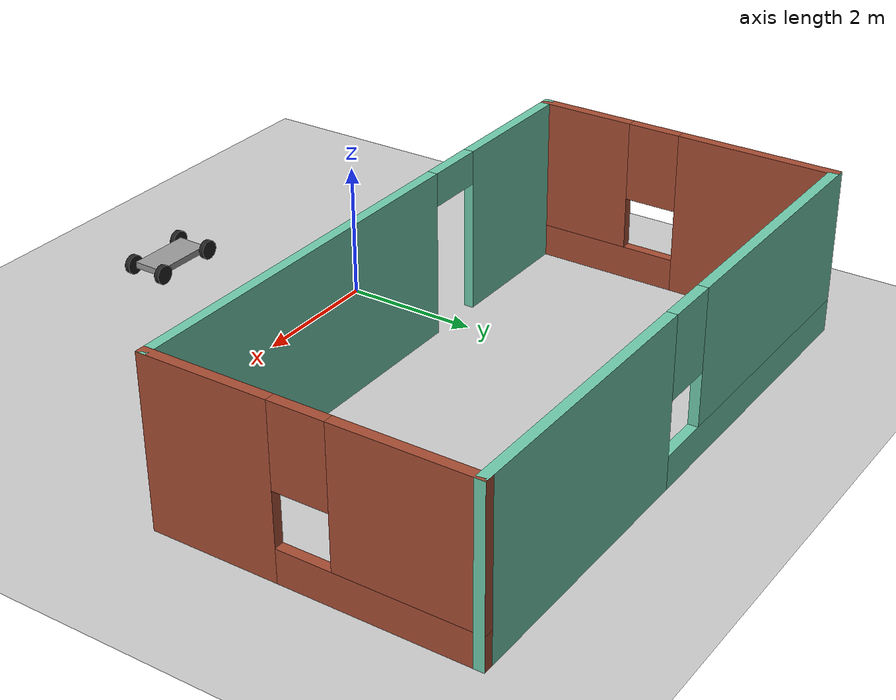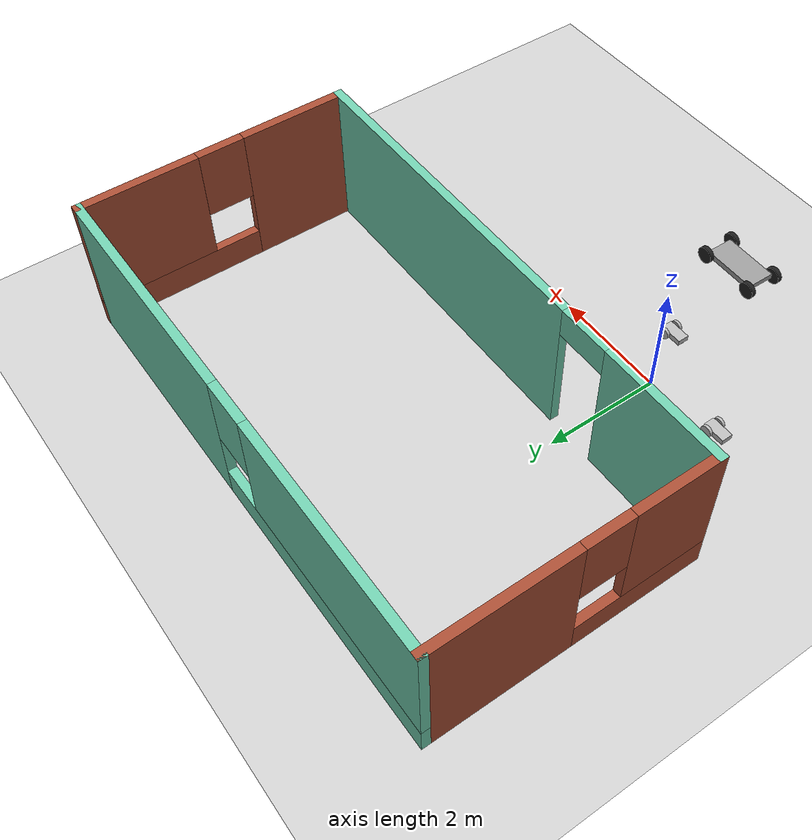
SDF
<sdf version="1.6">
 <world name="default">
  <plugin name="hello" filename="libwelcome.so"/>
  <light name="sun" type="directional">
   <pose>0 0 10 0 -0 0</pose>
   <diffuse>0.8 0.8 0.8 1</diffuse>
   <specular>0.2 0.2 0.2 1</specular>
   <attenuation>
    <range>1000</range>
    <constant>0.9</constant>
    <linear>0.01</linear>
    <quadratic>0.001</quadratic>
   </attenuation>
   <direction>-0.5 0.1 -0.9</direction>
  </light>
  <model name="ground_plane">
   <static>1</static>
   <link name="link">
    <collision name="collision">
     <geometry><plane><normal>0 0 1</normal><size>100 100</size></plane></geometry>
     <surface>
      <contact><collide_bitmask>65535</collide_bitmask></contact>
      <friction><ode><mu>100</mu><mu2>50</mu2></ode></friction>
     </surface>
    </collision>
    <visual name="visual">
     <cast_shadows>0</cast_shadows>
     <geometry><plane><normal>0 0 1</normal><size>100 100</size></plane></geometry>
     <material>
      <script><uri>file://media/materials/scripts/gazebo.material</uri><name>Gazebo/Grey</name></script>
     </material>
    </visual>
   </link>
  </model>
  <gravity>0 0 -9.8</gravity>
  <magnetic_field>6e-06 2.3e-05 -4.2e-05</magnetic_field>
  <atmosphere type="adiabatic"/>
  <physics name="default_physics" default="0" type="ode">
   <max_step_size>0.001</max_step_size>
   <real_time_factor>1</real_time_factor>
   <real_time_update_rate>1000</real_time_update_rate>
  </physics>
  <scene><ambient>0.4 0.4 0.4 1</ambient><background>0.7 0.7 0.7 1</background><shadows>1</shadows></scene>
  <audio><device>default</device></audio>
  <spherical_coordinates>
   <surface_model>EARTH_WGS84</surface_model>
   <latitude_deg>0</latitude_deg>
   <longitude_deg>0</longitude_deg>
   <elevation>0</elevation>
   <heading_deg>0</heading_deg>
  </spherical_coordinates>
  <model name="Scott_building">
   <pose>1.73742 3.95881 0 0 -0 0</pose>
   <link name="Wall_3">
    <pose>-4.425 0 0 0 -0 -1.5708</pose>
    <visual name="Wall_3_Visual_0">
     <pose>-1.15369 0 1.25 0 -0 0</pose>
     <geometry><box><size>2.44261 0.15 2.5</size></box></geometry>
     <material>
      <script><uri>file://media/materials/scripts/gazebo.material</uri><name>Gazebo/Bricks</name></script>
      <ambient>0.435294 0.796078 0.67451 1</ambient>
     </material>
     <meta><layer>0</layer></meta>
    </visual>
    <collision name="Wall_3_Collision_0">
     <geometry><box><size>2.44261 0.15 2.5</size></box></geometry>
     <pose>-1.15369 0 1.25 0 -0 0</pose>
    </collision>
    <visual name="Wall_3_Visual_1">
     <pose>1.22131 0 0.25 0 -0 0</pose>
     <geometry><box><size>2.30739 0.15 0.5</size></box></geometry>
     <material>
      <script><uri>file://media/materials/scripts/gazebo.material</uri><name>Gazebo/Bricks</name></script>
      <ambient>0.435294 0.796078 0.67451 1</ambient>
     </material>
     <meta><layer>0</layer></meta>
    </visual>
    <collision name="Wall_3_Collision_1">
     <geometry><box><size>2.30739 0.15 0.5</size></box></geometry>
     <pose>1.22131 0 0.25 0 -0 0</pose>
    </collision>
    <visual name="Wall_3_Visual_2">
     <pose>1.62131 0 1.5 0 -0 0</pose>
     <geometry><box><size>1.50739 0.15 2</size></box></geometry>
     <material>
      <script><uri>file://media/materials/scripts/gazebo.material</uri><name>Gazebo/Bricks</name></script>
      <ambient>0.435294 0.796078 0.67451 1</ambient>
     </material>
     <meta><layer>0</layer></meta>
    </visual>
    <collision name="Wall_3_Collision_2">
     <geometry><box><size>1.50739 0.15 2</size></box></geometry>
     <pose>1.62131 0 1.5 0 -0 0</pose>
    </collision>
    <visual name="Wall_3_Visual_3">
     <pose>0.467613 0 1.9 0 -0 0</pose>
     <geometry><box><size>0.8 0.15 1.2</size></box></geometry>
     <material>
      <script><uri>file://media/materials/scripts/gazebo.material</uri><name>Gazebo/Bricks</name></script>
      <ambient>0.435294 0.796078 0.67451 1</ambient>
     </material>
     <meta><layer>0</layer></meta>
    </visual>
    <collision name="Wall_3_Collision_3">
     <geometry><box><size>0.8 0.15 1.2</size></box></geometry>
     <pose>0.467613 0 1.9 0 -0 0</pose>
    </collision>
   </link>
   <link name="Wall_4">
    <pose>0 -2.3 0 0 -0 0</pose>
    <visual name="Wall_4_Visual_0">
     <pose>-3.38846 0 1.25 0 -0 0</pose>
     <geometry><box><size>2.22309 0.15 2.5</size></box></geometry>
     <material>
      <script><uri>file://media/materials/scripts/gazebo.material</uri><name>Gazebo/Grey</name></script>
      <ambient>0.435294 0.796078 0.67451 1</ambient>
     </material>
     <meta><layer>0</layer></meta>
    </visual>
    <collision name="Wall_4_Collision_0">
     <geometry><box><size>2.22309 0.15 2.5</size></box></geometry>
     <pose>-3.38846 0 1.25 0 -0 0</pose>
    </collision>
    <visual name="Wall_4_Visual_1">
     <pose>1.56154 0 1.25 0 -0 0</pose>
     <geometry><box><size>5.87692 0.15 2.5</size></box></geometry>
     <material>
      <script><uri>file://media/materials/scripts/gazebo.material</uri><name>Gazebo/Grey</name></script>
      <ambient>0.435294 0.796078 0.67451 1</ambient>
     </material>
     <meta><layer>0</layer></meta>
    </visual>
    <collision name="Wall_4_Collision_1">
     <geometry><box><size>5.87692 0.15 2.5</size></box></geometry>
     <pose>1.56154 0 1.25 0 -0 0</pose>
    </collision>
    <visual name="Wall_4_Visual_2">
     <pose>-1.82692 0 2.25 0 -0 0</pose>
     <geometry><box><size>0.9 0.15 0.5</size></box></geometry>
     <material>
      <script><uri>file://media/materials/scripts/gazebo.material</uri><name>Gazebo/Grey</name></script>
      <ambient>0.435294 0.796078 0.67451 1</ambient>
     </material>
     <meta><layer>0</layer></meta>
    </visual>
    <collision name="Wall_4_Collision_2">
     <geometry><box><size>0.9 0.15 0.5</size></box></geometry>
     <pose>-1.82692 0 2.25 0 -0 0</pose>
    </collision>
   </link>
   <link name="Wall_5">
    <pose>4.425 0 0 0 -0 1.5708</pose>
    <visual name="Wall_5_Visual_0">
     <pose>-1.42736 0 1.25 0 -0 0</pose>
     <geometry><box><size>1.89528 0.15 2.5</size></box></geometry>
     <material>
      <script><uri>file://media/materials/scripts/gazebo.material</uri><name>Gazebo/Bricks</name></script>
      <ambient>0.435294 0.796078 0.67451 1</ambient>
     </material>
     <meta><layer>0</layer></meta>
    </visual>
    <collision name="Wall_5_Collision_0">
     <geometry><box><size>1.89528 0.15 2.5</size></box></geometry>
     <pose>-1.42736 0 1.25 0 -0 0</pose>
    </collision>
    <visual name="Wall_5_Visual_1">
     <pose>0.94764 0 0.25 0 -0 0</pose>
     <geometry><box><size>2.85472 0.15 0.5</size></box></geometry>
     <material>
      <script><uri>file://media/materials/scripts/gazebo.material</uri><name>Gazebo/Bricks</name></script>
      <ambient>0.435294 0.796078 0.67451 1</ambient>
     </material>
     <meta><layer>0</layer></meta>
    </visual>
    <collision name="Wall_5_Collision_1">
     <geometry><box><size>2.85472 0.15 0.5</size></box></geometry>
     <pose>0.94764 0 0.25 0 -0 0</pose>
    </collision>
    <visual name="Wall_5_Visual_2">
     <pose>1.34764 0 1.5 0 -0 0</pose>
     <geometry><box><size>2.05472 0.15 2</size></box></geometry>
     <material>
      <script><uri>file://media/materials/scripts/gazebo.material</uri><name>Gazebo/Bricks</name></script>
      <ambient>0.435294 0.796078 0.67451 1</ambient>
     </material>
     <meta><layer>0</layer></meta>
    </visual>
    <collision name="Wall_5_Collision_2">
     <geometry><box><size>2.05472 0.15 2</size></box></geometry>
     <pose>1.34764 0 1.5 0 -0 0</pose>
    </collision>
    <visual name="Wall_5_Visual_3">
     <pose>-0.07972 0 1.9 0 -0 0</pose>
     <geometry><box><size>0.8 0.15 1.2</size></box></geometry>
     <material>
      <script><uri>file://media/materials/scripts/gazebo.material</uri><name>Gazebo/Bricks</name></script>
      <ambient>0.435294 0.796078 0.67451 1</ambient>
     </material>
     <meta><layer>0</layer></meta>
    </visual>
    <collision name="Wall_5_Collision_3">
     <geometry><box><size>0.8 0.15 1.2</size></box></geometry>
     <pose>-0.07972 0 1.9 0 -0 0</pose>
    </collision>
   </link>
   <link name="Wall_6">
    <pose>0 2.3 0 0 -0 3.14159</pose>
    <visual name="Wall_6_Visual_0">
     <pose>-2.41933 0 1.25 0 -0 0</pose>
     <geometry><box><size>4.16133 0.15 2.5</size></box></geometry>
     <material>
      <script><uri>file://media/materials/scripts/gazebo.material</uri><name>Gazebo/Grey</name></script>
      <ambient>0.435294 0.796078 0.67451 1</ambient>
     </material>
     <meta><layer>0</layer></meta>
    </visual>
    <collision name="Wall_6_Collision_0">
     <geometry><box><size>4.16133 0.15 2.5</size></box></geometry>
     <pose>-2.41933 0 1.25 0 -0 0</pose>
    </collision>
    <visual name="Wall_6_Visual_1">
     <pose>2.08067 0 0.25 0 -0 0</pose>
     <geometry><box><size>4.83867 0.15 0.5</size></box></geometry>
     <material>
      <script><uri>file://media/materials/scripts/gazebo.material</uri><name>Gazebo/Grey</name></script>
      <ambient>0.435294 0.796078 0.67451 1</ambient>
     </material>
     <meta><layer>0</layer></meta>
    </visual>
    <collision name="Wall_6_Collision_1">
     <geometry><box><size>4.83867 0.15 0.5</size></box></geometry>
     <pose>2.08067 0 0.25 0 -0 0</pose>
    </collision>
    <visual name="Wall_6_Visual_2">
     <pose>2.48067 0 1.5 0 -0 0</pose>
     <geometry><box><size>4.03867 0.15 2</size></box></geometry>
     <material>
      <script><uri>file://media/materials/scripts/gazebo.material</uri><name>Gazebo/Grey</name></script>
      <ambient>0.435294 0.796078 0.67451 1</ambient>
     </material>
     <meta><layer>0</layer></meta>
    </visual>
    <collision name="Wall_6_Collision_2">
     <geometry><box><size>4.03867 0.15 2</size></box></geometry>
     <pose>2.48067 0 1.5 0 -0 0</pose>
    </collision>
    <visual name="Wall_6_Visual_3">
     <pose>0.061332 0 1.9 0 -0 0</pose>
     <geometry><box><size>0.8 0.15 1.2</size></box></geometry>
     <material>
      <script><uri>file://media/materials/scripts/gazebo.material</uri><name>Gazebo/Grey</name></script>
      <ambient>0.435294 0.796078 0.67451 1</ambient>
     </material>
     <meta><layer>0</layer></meta>
    </visual>
    <collision name="Wall_6_Collision_3">
     <geometry><box><size>0.8 0.15 1.2</size></box></geometry>
     <pose>0.061332 0 1.9 0 -0 0</pose>
    </collision>
   </link>
   <static>1</static>
  </model>
  <model name="my_robot2">
   <link name="chassis">
    <pose>-0 -0 0.1 0 -0 0</pose>
    <inertial>
     <inertia><ixx>1</ixx><ixy>0</ixy><ixz>0</ixz><iyy>1</iyy><iyz>0</iyz><izz>1</izz></inertia>
     <mass>1</mass>
    </inertial>
    <visual name="visual"><geometry><box><size>0.4 0.2 0.1</size></box></geometry></visual>
    <visual name="caster_visual">
     <pose>-0.15 0 -0.05 0 -0 0</pose>
     <geometry><sphere><radius>0.05</radius></sphere></geometry>
    </visual>
    <collision name="collision">
     <geometry><box><size>0.4 0.2 0.1</size></box></geometry>
     <surface>
      <friction>
       <ode><mu>1</mu><mu2>1</mu2><fdir1>0 0 0</fdir1><slip1>0</slip1><slip2>0</slip2></ode>
       <torsional>
        <coefficient>1</coefficient>
        <patch_radius>0</patch_radius>
        <surface_radius>0</surface_radius>
        <use_patch_radius>1</use_patch_radius>
        <ode><slip>0</slip></ode>
       </torsional>
      </friction>
      <bounce><restitution_coefficient>0</restitution_coefficient><threshold>1e+06</threshold></bounce>
      <contact>
       <collide_without_contact>0</collide_without_contact>
       <collide_without_contact_bitmask>1</collide_without_contact_bitmask>
       <collide_bitmask>1</collide_bitmask>
       <ode>
        <soft_cfm>0</soft_cfm>
        <soft_erp>0.2</soft_erp>
        <kp>1e+13</kp>
        <kd>1</kd>
        <max_vel>0.01</max_vel>
        <min_depth>0</min_depth>
       </ode>
       <bullet>
        <split_impulse>1</split_impulse>
        <split_impulse_penetration_threshold>-0.01</split_impulse_penetration_threshold>
        <soft_cfm>0</soft_cfm>
        <soft_erp>0.2</soft_erp>
        <kp>1e+13</kp>
        <kd>1</kd>
       </bullet>
      </contact>
     </surface>
    </collision>
    <collision name="caster_collision">
     <pose>-0.15 0 -0.05 0 -0 0</pose>
     <geometry><sphere><radius>0.05</radius></sphere></geometry>
     <surface>
      <friction>
       <ode><mu>0</mu><mu2>0</mu2><fdir1>0 0 0</fdir1><slip1>1</slip1><slip2>1</slip2></ode>
       <torsional>
        <coefficient>1</coefficient>
        <patch_radius>0</patch_radius>
        <surface_radius>0</surface_radius>
        <use_patch_radius>1</use_patch_radius>
        <ode><slip>0</slip></ode>
       </torsional>
      </friction>
      <bounce><restitution_coefficient>0</restitution_coefficient><threshold>1e+06</threshold></bounce>
      <contact>
       <collide_without_contact>0</collide_without_contact>
       <collide_without_contact_bitmask>1</collide_without_contact_bitmask>
       <collide_bitmask>1</collide_bitmask>
       <ode>
        <soft_cfm>0</soft_cfm>
        <soft_erp>0.2</soft_erp>
        <kp>1e+13</kp>
        <kd>1</kd>
        <max_vel>0.01</max_vel>
        <min_depth>0</min_depth>
       </ode>
       <bullet>
        <split_impulse>1</split_impulse>
        <split_impulse_penetration_threshold>-0.01</split_impulse_penetration_threshold>
        <soft_cfm>0</soft_cfm>
        <soft_erp>0.2</soft_erp>
        <kp>1e+13</kp>
        <kd>1</kd>
       </bullet>
      </contact>
     </surface>
    </collision>
   </link>
   <link name="left_wheel">
    <pose>0.1 0.13 0.1 -0.000669 1.5707 1.57003</pose>
    <inertial>
     <inertia><ixx>1</ixx><ixy>0</ixy><ixz>0</ixz><iyy>1</iyy><iyz>0</iyz><izz>1</izz></inertia>
     <mass>1</mass>
    </inertial>
    <visual name="visual">
     <geometry><cylinder><radius>0.1</radius><length>0.05</length></cylinder></geometry>
    </visual>
    <collision name="collision">
     <geometry><cylinder><radius>0.1</radius><length>0.05</length></cylinder></geometry>
     <surface>
      <friction>
       <ode><mu>1</mu><mu2>1</mu2><fdir1>0 0 0</fdir1><slip1>0</slip1><slip2>0</slip2></ode>
       <torsional>
        <coefficient>1</coefficient>
        <patch_radius>0</patch_radius>
        <surface_radius>0</surface_radius>
        <use_patch_radius>1</use_patch_radius>
        <ode><slip>0</slip></ode>
       </torsional>
      </friction>
      <bounce><restitution_coefficient>0</restitution_coefficient><threshold>1e+06</threshold></bounce>
      <contact>
       <collide_without_contact>0</collide_without_contact>
       <collide_without_contact_bitmask>1</collide_without_contact_bitmask>
       <collide_bitmask>1</collide_bitmask>
       <ode>
        <soft_cfm>0</soft_cfm>
        <soft_erp>0.2</soft_erp>
        <kp>1e+13</kp>
        <kd>1</kd>
        <max_vel>0.01</max_vel>
        <min_depth>0</min_depth>
       </ode>
       <bullet>
        <split_impulse>1</split_impulse>
        <split_impulse_penetration_threshold>-0.01</split_impulse_penetration_threshold>
        <soft_cfm>0</soft_cfm>
        <soft_erp>0.2</soft_erp>
        <kp>1e+13</kp>
        <kd>1</kd>
       </bullet>
      </contact>
     </surface>
    </collision>
   </link>
   <link name="right_wheel">
    <pose>0.1 -0.13 0.1 -0.000669 1.5707 1.57003</pose>
    <inertial>
     <inertia><ixx>1</ixx><ixy>0</ixy><ixz>0</ixz><iyy>1</iyy><iyz>0</iyz><izz>1</izz></inertia>
     <mass>1</mass>
    </inertial>
    <visual name="visual">
     <geometry><cylinder><radius>0.1</radius><length>0.05</length></cylinder></geometry>
    </visual>
    <collision name="collision">
     <geometry><cylinder><radius>0.1</radius><length>0.05</length></cylinder></geometry>
     <surface>
      <friction>
       <ode><mu>1</mu><mu2>1</mu2><fdir1>0 0 0</fdir1><slip1>0</slip1><slip2>0</slip2></ode>
       <torsional>
        <coefficient>1</coefficient>
        <patch_radius>0</patch_radius>
        <surface_radius>0</surface_radius>
        <use_patch_radius>1</use_patch_radius>
        <ode><slip>0</slip></ode>
       </torsional>
      </friction>
      <bounce><restitution_coefficient>0</restitution_coefficient><threshold>1e+06</threshold></bounce>
      <contact>
       <collide_without_contact>0</collide_without_contact>
       <collide_without_contact_bitmask>1</collide_without_contact_bitmask>
       <collide_bitmask>1</collide_bitmask>
       <ode>
        <soft_cfm>0</soft_cfm>
        <soft_erp>0.2</soft_erp>
        <kp>1e+13</kp>
        <kd>1</kd>
        <max_vel>0.01</max_vel>
        <min_depth>0</min_depth>
       </ode>
       <bullet>
        <split_impulse>1</split_impulse>
        <split_impulse_penetration_threshold>-0.01</split_impulse_penetration_threshold>
        <soft_cfm>0</soft_cfm>
        <soft_erp>0.2</soft_erp>
        <kp>1e+13</kp>
        <kd>1</kd>
       </bullet>
      </contact>
     </surface>
    </collision>
   </link>
   <joint name="left_wheel_hinge" type="revolute">
    <parent>chassis</parent>
    <child>left_wheel</child>
    <pose>0 0 -0.03 0 -0 0</pose>
    <axis>
     <xyz>0 1 0</xyz>
     <use_parent_model_frame>1</use_parent_model_frame>
     <limit><lower>-1e+16</lower><upper>1e+16</upper><effort>-1</effort><velocity>-1</velocity></limit>
     <dynamics>
      <spring_reference>0</spring_reference>
      <spring_stiffness>0</spring_stiffness>
      <damping>0</damping>
      <friction>0</friction>
     </dynamics>
    </axis>
    <physics>
     <ode><limit><cfm>0</cfm><erp>0.2</erp></limit><suspension><cfm>0</cfm><erp>0.2</erp></suspension></ode>
    </physics>
   </joint>
   <joint name="right_wheel_hinge" type="revolute">
    <parent>chassis</parent>
    <child>right_wheel</child>
    <pose>0 0 0.03 0 -0 0</pose>
    <axis>
     <xyz>0 1 0</xyz>
     <use_parent_model_frame>1</use_parent_model_frame>
     <limit><lower>-1e+16</lower><upper>1e+16</upper><effort>-1</effort><velocity>-1</velocity></limit>
     <dynamics>
      <spring_reference>0</spring_reference>
      <spring_stiffness>0</spring_stiffness>
      <damping>0</damping>
      <friction>0</friction>
     </dynamics>
    </axis>
    <physics>
     <ode><limit><cfm>0</cfm><erp>0.2</erp></limit><suspension><cfm>0</cfm><erp>0.2</erp></suspension></ode>
    </physics>
   </joint>
   <static>0</static>
   <pose>-1.34398 -0.14011 2e-06 5e-06 3e-06 0.005787</pose>
  </model>
  <model name="my_robot2_0">
   <link name="chassis">
    <pose>-0 -0 0.1 0 -0 0</pose>
    <inertial>
     <inertia><ixx>1</ixx><ixy>0</ixy><ixz>0</ixz><iyy>1</iyy><iyz>0</iyz><izz>1</izz></inertia>
     <mass>1</mass>
    </inertial>
    <visual name="visual"><geometry><box><size>0.4 0.2 0.1</size></box></geometry></visual>
    <visual name="caster_visual">
     <pose>-0.15 0 -0.05 0 -0 0</pose>
     <geometry><sphere><radius>0.05</radius></sphere></geometry>
    </visual>
    <collision name="collision">
     <geometry><box><size>0.4 0.2 0.1</size></box></geometry>
     <surface>
      <friction>
       <ode><mu>1</mu><mu2>1</mu2><fdir1>0 0 0</fdir1><slip1>0</slip1><slip2>0</slip2></ode>
       <torsional>
        <coefficient>1</coefficient>
        <patch_radius>0</patch_radius>
        <surface_radius>0</surface_radius>
        <use_patch_radius>1</use_patch_radius>
        <ode><slip>0</slip></ode>
       </torsional>
      </friction>
      <bounce><restitution_coefficient>0</restitution_coefficient><threshold>1e+06</threshold></bounce>
      <contact>
       <collide_without_contact>0</collide_without_contact>
       <collide_without_contact_bitmask>1</collide_without_contact_bitmask>
       <collide_bitmask>1</collide_bitmask>
       <ode>
        <soft_cfm>0</soft_cfm>
        <soft_erp>0.2</soft_erp>
        <kp>1e+13</kp>
        <kd>1</kd>
        <max_vel>0.01</max_vel>
        <min_depth>0</min_depth>
       </ode>
       <bullet>
        <split_impulse>1</split_impulse>
        <split_impulse_penetration_threshold>-0.01</split_impulse_penetration_threshold>
        <soft_cfm>0</soft_cfm>
        <soft_erp>0.2</soft_erp>
        <kp>1e+13</kp>
        <kd>1</kd>
       </bullet>
      </contact>
     </surface>
    </collision>
    <collision name="caster_collision">
     <pose>-0.15 0 -0.05 0 -0 0</pose>
     <geometry><sphere><radius>0.05</radius></sphere></geometry>
     <surface>
      <friction>
       <ode><mu>0</mu><mu2>0</mu2><fdir1>0 0 0</fdir1><slip1>1</slip1><slip2>1</slip2></ode>
       <torsional>
        <coefficient>1</coefficient>
        <patch_radius>0</patch_radius>
        <surface_radius>0</surface_radius>
        <use_patch_radius>1</use_patch_radius>
        <ode><slip>0</slip></ode>
       </torsional>
      </friction>
      <bounce><restitution_coefficient>0</restitution_coefficient><threshold>1e+06</threshold></bounce>
      <contact>
       <collide_without_contact>0</collide_without_contact>
       <collide_without_contact_bitmask>1</collide_without_contact_bitmask>
       <collide_bitmask>1</collide_bitmask>
       <ode>
        <soft_cfm>0</soft_cfm>
        <soft_erp>0.2</soft_erp>
        <kp>1e+13</kp>
        <kd>1</kd>
        <max_vel>0.01</max_vel>
        <min_depth>0</min_depth>
       </ode>
       <bullet>
        <split_impulse>1</split_impulse>
        <split_impulse_penetration_threshold>-0.01</split_impulse_penetration_threshold>
        <soft_cfm>0</soft_cfm>
        <soft_erp>0.2</soft_erp>
        <kp>1e+13</kp>
        <kd>1</kd>
       </bullet>
      </contact>
     </surface>
    </collision>
   </link>
   <link name="left_wheel">
    <pose>0.1 0.13 0.1 -0.000669 1.5707 1.57003</pose>
    <inertial>
     <inertia><ixx>1</ixx><ixy>0</ixy><ixz>0</ixz><iyy>1</iyy><iyz>0</iyz><izz>1</izz></inertia>
     <mass>1</mass>
    </inertial>
    <visual name="visual">
     <geometry><cylinder><radius>0.1</radius><length>0.05</length></cylinder></geometry>
    </visual>
    <collision name="collision">
     <geometry><cylinder><radius>0.1</radius><length>0.05</length></cylinder></geometry>
     <surface>
      <friction>
       <ode><mu>1</mu><mu2>1</mu2><fdir1>0 0 0</fdir1><slip1>0</slip1><slip2>0</slip2></ode>
       <torsional>
        <coefficient>1</coefficient>
        <patch_radius>0</patch_radius>
        <surface_radius>0</surface_radius>
        <use_patch_radius>1</use_patch_radius>
        <ode><slip>0</slip></ode>
       </torsional>
      </friction>
      <bounce><restitution_coefficient>0</restitution_coefficient><threshold>1e+06</threshold></bounce>
      <contact>
       <collide_without_contact>0</collide_without_contact>
       <collide_without_contact_bitmask>1</collide_without_contact_bitmask>
       <collide_bitmask>1</collide_bitmask>
       <ode>
        <soft_cfm>0</soft_cfm>
        <soft_erp>0.2</soft_erp>
        <kp>1e+13</kp>
        <kd>1</kd>
        <max_vel>0.01</max_vel>
        <min_depth>0</min_depth>
       </ode>
       <bullet>
        <split_impulse>1</split_impulse>
        <split_impulse_penetration_threshold>-0.01</split_impulse_penetration_threshold>
        <soft_cfm>0</soft_cfm>
        <soft_erp>0.2</soft_erp>
        <kp>1e+13</kp>
        <kd>1</kd>
       </bullet>
      </contact>
     </surface>
    </collision>
   </link>
   <link name="right_wheel">
    <pose>0.1 -0.13 0.1 -0.000669 1.5707 1.57003</pose>
    <inertial>
     <inertia><ixx>1</ixx><ixy>0</ixy><ixz>0</ixz><iyy>1</iyy><iyz>0</iyz><izz>1</izz></inertia>
     <mass>1</mass>
    </inertial>
    <visual name="visual">
     <geometry><cylinder><radius>0.1</radius><length>0.05</length></cylinder></geometry>
    </visual>
    <collision name="collision">
     <geometry><cylinder><radius>0.1</radius><length>0.05</length></cylinder></geometry>
     <surface>
      <friction>
       <ode><mu>1</mu><mu2>1</mu2><fdir1>0 0 0</fdir1><slip1>0</slip1><slip2>0</slip2></ode>
       <torsional>
        <coefficient>1</coefficient>
        <patch_radius>0</patch_radius>
        <surface_radius>0</surface_radius>
        <use_patch_radius>1</use_patch_radius>
        <ode><slip>0</slip></ode>
       </torsional>
      </friction>
      <bounce><restitution_coefficient>0</restitution_coefficient><threshold>1e+06</threshold></bounce>
      <contact>
       <collide_without_contact>0</collide_without_contact>
       <collide_without_contact_bitmask>1</collide_without_contact_bitmask>
       <collide_bitmask>1</collide_bitmask>
       <ode>
        <soft_cfm>0</soft_cfm>
        <soft_erp>0.2</soft_erp>
        <kp>1e+13</kp>
        <kd>1</kd>
        <max_vel>0.01</max_vel>
        <min_depth>0</min_depth>
       </ode>
       <bullet>
        <split_impulse>1</split_impulse>
        <split_impulse_penetration_threshold>-0.01</split_impulse_penetration_threshold>
        <soft_cfm>0</soft_cfm>
        <soft_erp>0.2</soft_erp>
        <kp>1e+13</kp>
        <kd>1</kd>
       </bullet>
      </contact>
     </surface>
    </collision>
   </link>
   <joint name="left_wheel_hinge" type="revolute">
    <parent>chassis</parent>
    <child>left_wheel</child>
    <pose>0 0 -0.03 0 -0 0</pose>
    <axis>
     <xyz>0 1 0</xyz>
     <use_parent_model_frame>1</use_parent_model_frame>
     <limit><lower>-1e+16</lower><upper>1e+16</upper><effort>-1</effort><velocity>-1</velocity></limit>
     <dynamics>
      <spring_reference>0</spring_reference>
      <spring_stiffness>0</spring_stiffness>
      <damping>0</damping>
      <friction>0</friction>
     </dynamics>
    </axis>
    <physics>
     <ode><limit><cfm>0</cfm><erp>0.2</erp></limit><suspension><cfm>0</cfm><erp>0.2</erp></suspension></ode>
    </physics>
   </joint>
   <joint name="right_wheel_hinge" type="revolute">
    <parent>chassis</parent>
    <child>right_wheel</child>
    <pose>0 0 0.03 0 -0 0</pose>
    <axis>
     <xyz>0 1 0</xyz>
     <use_parent_model_frame>1</use_parent_model_frame>
     <limit><lower>-1e+16</lower><upper>1e+16</upper><effort>-1</effort><velocity>-1</velocity></limit>
     <dynamics>
      <spring_reference>0</spring_reference>
      <spring_stiffness>0</spring_stiffness>
      <damping>0</damping>
      <friction>0</friction>
     </dynamics>
    </axis>
    <physics>
     <ode><limit><cfm>0</cfm><erp>0.2</erp></limit><suspension><cfm>0</cfm><erp>0.2</erp></suspension></ode>
    </physics>
   </joint>
   <static>0</static>
   <pose>0.496839 -0.950493 3e-06 -1.6e-05 -1.7e-05 0.005546</pose>
  </model>
  <model name="cart_soft_suspension">
   <link name="chassis">
    <pose>0 0 0.15 0 -0 0</pose>
    <inertial>
     <pose>0.1 0 0 0 -0 0</pose>
     <mass>10</mass>
     <inertia>
      <ixx>0.216667</ixx>
      <iyy>0.841667</iyy>
      <izz>1.04167</izz>
      <ixy>0</ixy>
      <ixz>0</ixz>
      <iyz>0</iyz>
     </inertia>
    </inertial>
    <collision name="collision"><geometry><box><size>1 0.5 0.1</size></box></geometry></collision>
    <visual name="visual">
     <geometry><box><size>1 0.5 0.1</size></box></geometry>
     <material>
      <script><uri>file://media/materials/scripts/gazebo.material</uri><name>Gazebo/Grey</name></script>
     </material>
    </visual>
   </link>
   <link name="susp_front_right">
    <pose>0.5 -0.298 0.15 0 -0 0</pose>
    <inertial>
     <mass>0.5</mass>
     <inertia>
      <ixx>0.000208333</ixx>
      <iyy>0.000208333</iyy>
      <izz>0.000208333</izz>
      <ixy>0</ixy>
      <ixz>0</ixz>
      <iyz>0</iyz>
     </inertia>
    </inertial>
    <collision name="collision"><geometry><box><size>0.05 0.05 0.05</size></box></geometry></collision>
    <visual name="visual">
     <geometry><box><size>0.05 0.05 0.05</size></box></geometry>
     <material>
      <script><uri>file://media/materials/scripts/gazebo.material</uri><name>Gazebo/Black</name></script>
     </material>
    </visual>
   </link>
   <joint name="susp_front_right_prismatic" type="prismatic">
    <parent>chassis</parent>
    <child>susp_front_right</child>
    <axis>
     <xyz>0 0 -1</xyz>
     <limit><lower>-0.0375</lower><upper>0.0375</upper></limit>
     <dynamics>
      <damping>100</damping>
      <spring_stiffness>2500</spring_stiffness>
      <spring_reference>0.05</spring_reference>
     </dynamics>
     <use_parent_model_frame>0</use_parent_model_frame>
    </axis>
    <physics>
     <ode><implicit_spring_damper>1</implicit_spring_damper><limit><cfm>0</cfm><erp>0.2</erp></limit></ode>
    </physics>
   </joint>
   <link name="wheel_front_right">
    <pose>0.5 -0.298 0.15 -1.5708 0 0</pose>
    <inertial>
     <mass>0.5</mass>
     <inertia>
      <ixx>0.00307917</ixx>
      <iyy>0.00307917</iyy>
      <izz>0.005625</izz>
      <ixy>0</ixy>
      <ixz>0</ixz>
      <iyz>0</iyz>
     </inertia>
    </inertial>
    <collision name="collision">
     <geometry><cylinder><radius>0.15</radius><length>0.08</length></cylinder></geometry>
    </collision>
    <visual name="visual">
     <geometry><cylinder><radius>0.15</radius><length>0.08</length></cylinder></geometry>
     <material>
      <script><uri>file://media/materials/scripts/gazebo.material</uri><name>Gazebo/Black</name></script>
     </material>
    </visual>
   </link>
   <joint name="wheel_front_right_spin" type="revolute">
    <parent>susp_front_right</parent>
    <child>wheel_front_right</child>
    <axis>
     <xyz>0 0 1</xyz>
     <use_parent_model_frame>0</use_parent_model_frame>
     <limit><lower>-1e+16</lower><upper>1e+16</upper></limit>
     <dynamics><spring_reference>0</spring_reference><spring_stiffness>0</spring_stiffness></dynamics>
    </axis>
   </joint>
   <link name="susp_front_left">
    <pose>0.5 0.298 0.15 0 -0 0</pose>
    <inertial>
     <mass>0.5</mass>
     <inertia>
      <ixx>0.000208333</ixx>
      <iyy>0.000208333</iyy>
      <izz>0.000208333</izz>
      <ixy>0</ixy>
      <ixz>0</ixz>
      <iyz>0</iyz>
     </inertia>
    </inertial>
    <collision name="collision"><geometry><box><size>0.05 0.05 0.05</size></box></geometry></collision>
    <visual name="visual">
     <geometry><box><size>0.05 0.05 0.05</size></box></geometry>
     <material>
      <script><uri>file://media/materials/scripts/gazebo.material</uri><name>Gazebo/Black</name></script>
     </material>
    </visual>
   </link>
   <joint name="susp_front_left_prismatic" type="prismatic">
    <parent>chassis</parent>
    <child>susp_front_left</child>
    <axis>
     <xyz>0 0 -1</xyz>
     <limit><lower>-0.0375</lower><upper>0.0375</upper></limit>
     <dynamics>
      <damping>100</damping>
      <spring_stiffness>2500</spring_stiffness>
      <spring_reference>0.05</spring_reference>
     </dynamics>
     <use_parent_model_frame>0</use_parent_model_frame>
    </axis>
    <physics>
     <ode><implicit_spring_damper>1</implicit_spring_damper><limit><cfm>0</cfm><erp>0.2</erp></limit></ode>
    </physics>
   </joint>
   <link name="wheel_front_left">
    <pose>0.5 0.298 0.15 -1.5708 0 0</pose>
    <inertial>
     <mass>0.5</mass>
     <inertia>
      <ixx>0.00307917</ixx>
      <iyy>0.00307917</iyy>
      <izz>0.005625</izz>
      <ixy>0</ixy>
      <ixz>0</ixz>
      <iyz>0</iyz>
     </inertia>
    </inertial>
    <collision name="collision">
     <geometry><cylinder><radius>0.15</radius><length>0.08</length></cylinder></geometry>
    </collision>
    <visual name="visual">
     <geometry><cylinder><radius>0.15</radius><length>0.08</length></cylinder></geometry>
     <material>
      <script><uri>file://media/materials/scripts/gazebo.material</uri><name>Gazebo/Black</name></script>
     </material>
    </visual>
   </link>
   <joint name="wheel_front_left_spin" type="revolute">
    <parent>susp_front_left</parent>
    <child>wheel_front_left</child>
    <axis>
     <xyz>0 0 1</xyz>
     <use_parent_model_frame>0</use_parent_model_frame>
     <limit><lower>-1e+16</lower><upper>1e+16</upper></limit>
     <dynamics><spring_reference>0</spring_reference><spring_stiffness>0</spring_stiffness></dynamics>
    </axis>
   </joint>
   <link name="susp_rear_right">
    <pose>-0.5 -0.298 0.15 0 -0 0</pose>
    <inertial>
     <mass>0.5</mass>
     <inertia>
      <ixx>0.000208333</ixx>
      <iyy>0.000208333</iyy>
      <izz>0.000208333</izz>
      <ixy>0</ixy>
      <ixz>0</ixz>
      <iyz>0</iyz>
     </inertia>
    </inertial>
    <collision name="collision"><geometry><box><size>0.05 0.05 0.05</size></box></geometry></collision>
    <visual name="visual">
     <geometry><box><size>0.05 0.05 0.05</size></box></geometry>
     <material>
      <script><uri>file://media/materials/scripts/gazebo.material</uri><name>Gazebo/Black</name></script>
     </material>
    </visual>
   </link>
   <joint name="susp_rear_right_prismatic" type="prismatic">
    <parent>chassis</parent>
    <child>susp_rear_right</child>
    <axis>
     <xyz>0 0 -1</xyz>
     <limit><lower>-0.0375</lower><upper>0.0375</upper></limit>
     <dynamics>
      <damping>100</damping>
      <spring_stiffness>2500</spring_stiffness>
      <spring_reference>0.05</spring_reference>
     </dynamics>
     <use_parent_model_frame>0</use_parent_model_frame>
    </axis>
    <physics>
     <ode><implicit_spring_damper>1</implicit_spring_damper><limit><cfm>0</cfm><erp>0.2</erp></limit></ode>
    </physics>
   </joint>
   <link name="wheel_rear_right">
    <pose>-0.5 -0.298 0.15 -1.5708 0 0</pose>
    <inertial>
     <mass>0.5</mass>
     <inertia>
      <ixx>0.00307917</ixx>
      <iyy>0.00307917</iyy>
      <izz>0.005625</izz>
      <ixy>0</ixy>
      <ixz>0</ixz>
      <iyz>0</iyz>
     </inertia>
    </inertial>
    <collision name="collision">
     <geometry><cylinder><radius>0.15</radius><length>0.08</length></cylinder></geometry>
    </collision>
    <visual name="visual">
     <geometry><cylinder><radius>0.15</radius><length>0.08</length></cylinder></geometry>
     <material>
      <script><uri>file://media/materials/scripts/gazebo.material</uri><name>Gazebo/Black</name></script>
     </material>
    </visual>
   </link>
   <joint name="wheel_rear_right_spin" type="revolute">
    <parent>susp_rear_right</parent>
    <child>wheel_rear_right</child>
    <axis>
     <xyz>0 0 1</xyz>
     <use_parent_model_frame>0</use_parent_model_frame>
     <limit><lower>-1e+16</lower><upper>1e+16</upper></limit>
     <dynamics><spring_reference>0</spring_reference><spring_stiffness>0</spring_stiffness></dynamics>
    </axis>
   </joint>
   <link name="susp_rear_left">
    <pose>-0.5 0.298 0.15 0 -0 0</pose>
    <inertial>
     <mass>0.5</mass>
     <inertia>
      <ixx>0.000208333</ixx>
      <iyy>0.000208333</iyy>
      <izz>0.000208333</izz>
      <ixy>0</ixy>
      <ixz>0</ixz>
      <iyz>0</iyz>
     </inertia>
    </inertial>
    <collision name="collision"><geometry><box><size>0.05 0.05 0.05</size></box></geometry></collision>
    <visual name="visual">
     <geometry><box><size>0.05 0.05 0.05</size></box></geometry>
     <material>
      <script><uri>file://media/materials/scripts/gazebo.material</uri><name>Gazebo/Black</name></script>
     </material>
    </visual>
   </link>
   <joint name="susp_rear_left_prismatic" type="prismatic">
    <parent>chassis</parent>
    <child>susp_rear_left</child>
    <axis>
     <xyz>0 0 -1</xyz>
     <limit><lower>-0.0375</lower><upper>0.0375</upper></limit>
     <dynamics>
      <damping>100</damping>
      <spring_stiffness>2500</spring_stiffness>
      <spring_reference>0.05</spring_reference>
     </dynamics>
     <use_parent_model_frame>0</use_parent_model_frame>
    </axis>
    <physics>
     <ode><implicit_spring_damper>1</implicit_spring_damper><limit><cfm>0</cfm><erp>0.2</erp></limit></ode>
    </physics>
   </joint>
   <link name="wheel_rear_left">
    <pose>-0.5 0.298 0.15 -1.5708 0 0</pose>
    <inertial>
     <mass>0.5</mass>
     <inertia>
      <ixx>0.00307917</ixx>
      <iyy>0.00307917</iyy>
      <izz>0.005625</izz>
      <ixy>0</ixy>
      <ixz>0</ixz>
      <iyz>0</iyz>
     </inertia>
    </inertial>
    <collision name="collision">
     <geometry><cylinder><radius>0.15</radius><length>0.08</length></cylinder></geometry>
    </collision>
    <visual name="visual">
     <geometry><cylinder><radius>0.15</radius><length>0.08</length></cylinder></geometry>
     <material>
      <script><uri>file://media/materials/scripts/gazebo.material</uri><name>Gazebo/Black</name></script>
     </material>
    </visual>
   </link>
   <joint name="wheel_rear_left_spin" type="revolute">
    <parent>susp_rear_left</parent>
    <child>wheel_rear_left</child>
    <axis>
     <xyz>0 0 1</xyz>
     <use_parent_model_frame>0</use_parent_model_frame>
     <limit><lower>-1e+16</lower><upper>1e+16</upper></limit>
     <dynamics><spring_reference>0</spring_reference><spring_stiffness>0</spring_stiffness></dynamics>
    </axis>
   </joint>
   <pose>0.946544 -2.81618 0.037386 -2.4e-05 0.00019 -0.014158</pose>
  </model>
 </world>
</sdf>
